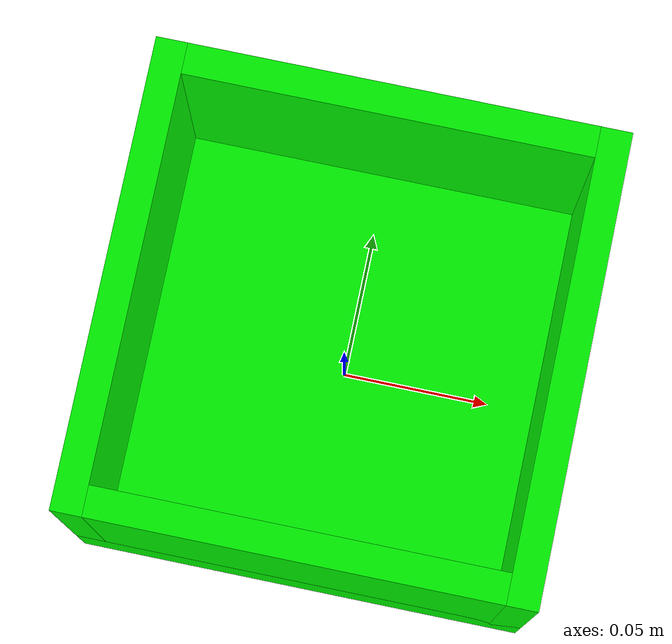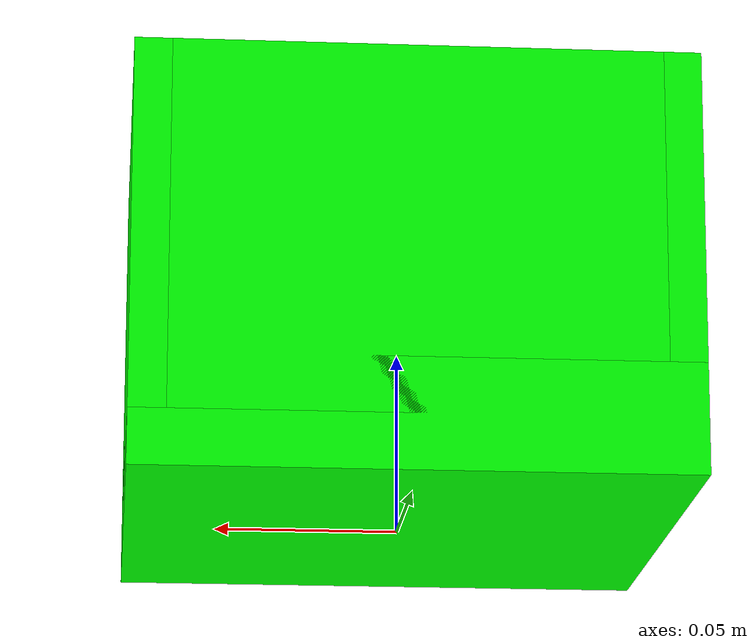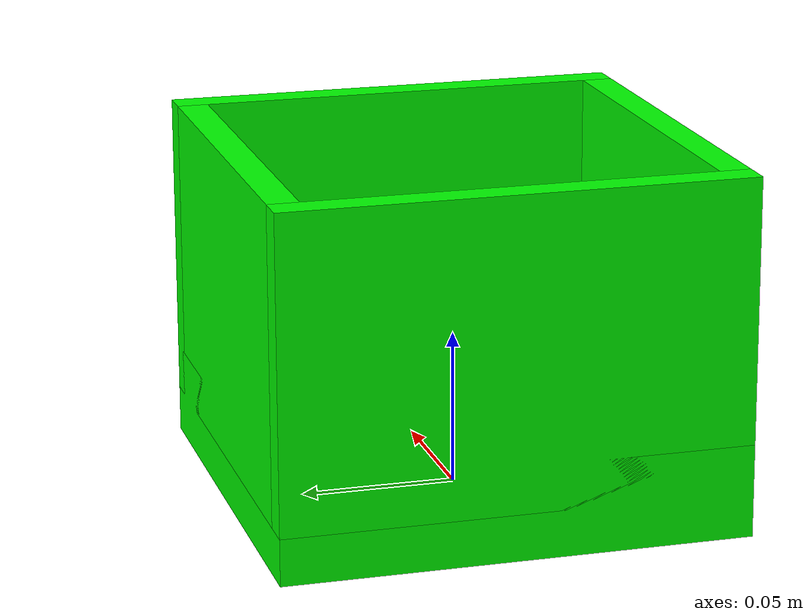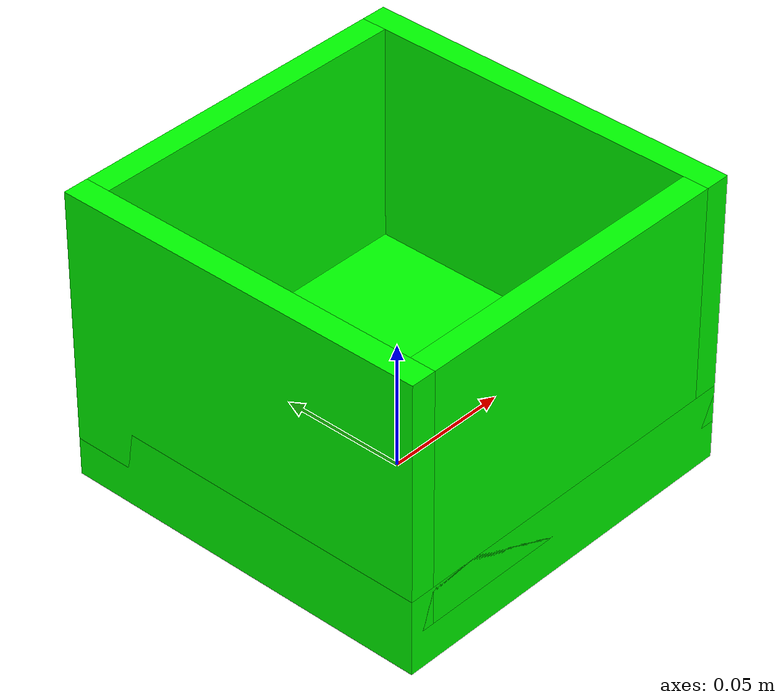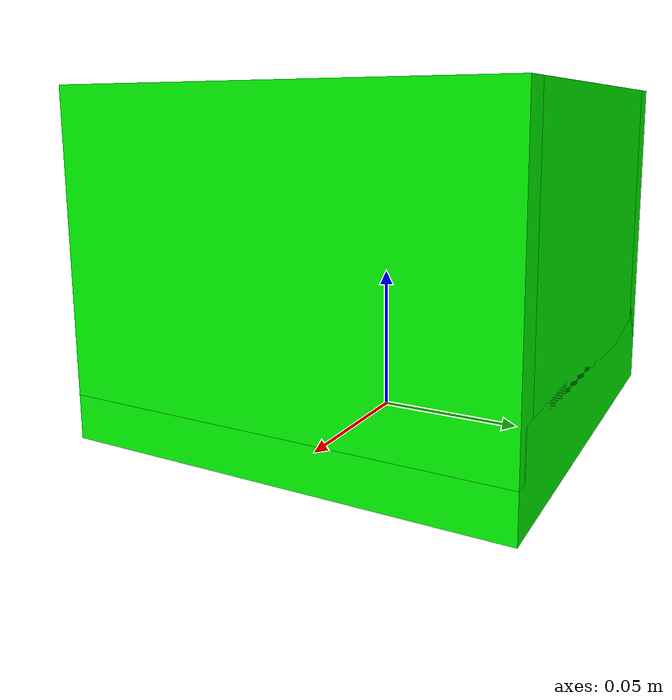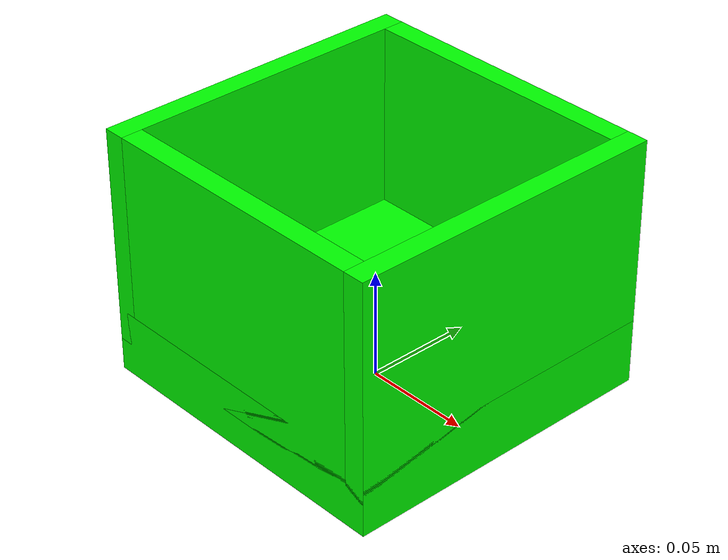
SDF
<?xml version="1.0" ?>
<sdf version="1.7">
  <model name="green_bin">
    <static>true</static>
    <link name="bin_link">
      <!-- Bottom - Thick and visible -->
      <collision name="bottom_collision">
        <pose>0 0 0.015 0 0 0</pose>
        <geometry>
          <box>
            <size>0.15 0.15 0.03</size>
          </box>
        </geometry>
      </collision>
      <visual name="bottom_visual">
        <pose>0 0 0.015 0 0 0</pose>
        <geometry>
          <box>
            <size>0.15 0.15 0.03</size>
          </box>
        </geometry>
        <material>
          <ambient>0.0 1.0 0.0 1</ambient>
          <diffuse>0.0 1.0 0.0 1</diffuse>
          <specular>0.2 0.2 0.2 1</specular>
        </material>
      </visual>

      <!-- Front Wall -->
      <collision name="front_wall_collision">
        <pose>0.07 0 0.065 0 0 0</pose>
        <geometry>
          <box>
            <size>0.01 0.15 0.10</size>
          </box>
        </geometry>
      </collision>
      <visual name="front_wall_visual">
        <pose>0.07 0 0.065 0 0 0</pose>
        <geometry>
          <box>
            <size>0.01 0.15 0.10</size>
          </box>
        </geometry>
        <material>
          <ambient>0.0 1.0 0.0 1</ambient>
          <diffuse>0.0 1.0 0.0 1</diffuse>
          <specular>0.2 0.2 0.2 1</specular>
        </material>
      </visual>

      <!-- Back Wall -->
      <collision name="back_wall_collision">
        <pose>-0.07 0 0.065 0 0 0</pose>
        <geometry>
          <box>
            <size>0.01 0.15 0.10</size>
          </box>
        </geometry>
      </collision>
      <visual name="back_wall_visual">
        <pose>-0.07 0 0.065 0 0 0</pose>
        <geometry>
          <box>
            <size>0.01 0.15 0.10</size>
          </box>
        </geometry>
        <material>
          <ambient>0.0 1.0 0.0 1</ambient>
          <diffuse>0.0 1.0 0.0 1</diffuse>
          <specular>0.2 0.2 0.2 1</specular>
        </material>
      </visual>

      <!-- Left Wall -->
      <collision name="left_wall_collision">
        <pose>0 0.07 0.065 0 0 0</pose>
        <geometry>
          <box>
            <size>0.13 0.01 0.10</size>
          </box>
        </geometry>
      </collision>
      <visual name="left_wall_visual">
        <pose>0 0.07 0.065 0 0 0</pose>
        <geometry>
          <box>
            <size>0.13 0.01 0.10</size>
          </box>
        </geometry>
        <material>
          <ambient>0.0 1.0 0.0 1</ambient>
          <diffuse>0.0 1.0 0.0 1</diffuse>
          <specular>0.2 0.2 0.2 1</specular>
        </material>
      </visual>

      <!-- Right Wall -->
      <collision name="right_wall_collision">
        <pose>0 -0.07 0.065 0 0 0</pose>
        <geometry>
          <box>
            <size>0.13 0.01 0.10</size>
          </box>
        </geometry>
      </collision>
      <visual name="right_wall_visual">
        <pose>0 -0.07 0.065 0 0 0</pose>
        <geometry>
          <box>
            <size>0.13 0.01 0.10</size>
          </box>
        </geometry>
        <material>
          <ambient>0.0 1.0 0.0 1</ambient>
          <diffuse>0.0 1.0 0.0 1</diffuse>
          <specular>0.2 0.2 0.2 1</specular>
        </material>
      </visual>
    </link>
  </model>
</sdf>
